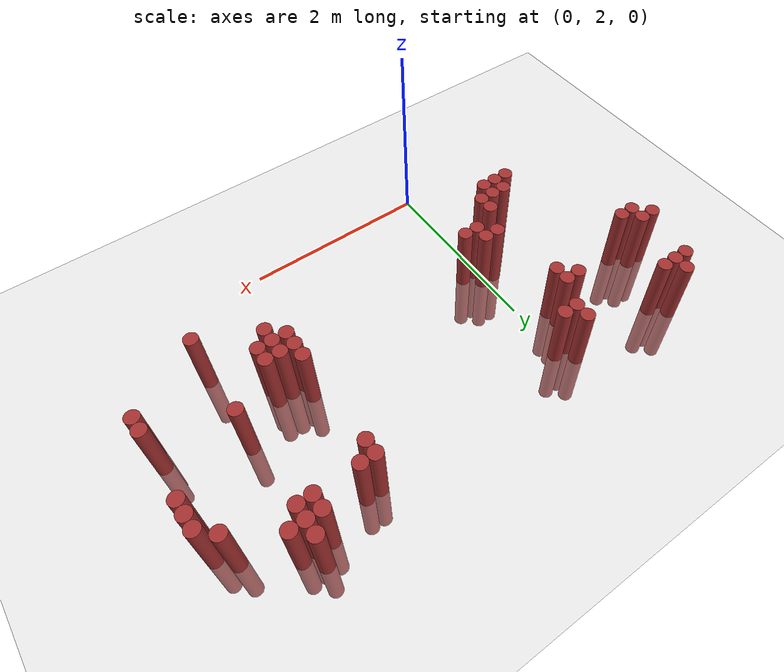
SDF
<sdf version="1.6">
 <world name="default">
  <model name="ground_plane">
   <static>1</static>
   <link name="link">
    <collision name="collision">
     <geometry><plane><normal>0 0 1</normal><size>100 100</size></plane></geometry>
     <surface><friction><ode><mu>100</mu><mu2>50</mu2></ode></friction></surface>
    </collision>
    <visual name="visual">
     <cast_shadows>0</cast_shadows>
     <geometry><plane><normal>0 0 1</normal><size>100 100</size></plane></geometry>
     <material>
      <script><uri>file://media/materials/scripts/gazebo.material</uri><name>Gazebo/Grey</name></script>
     </material>
    </visual>
   </link>
  </model>
  <model name="unit_cylinder_319">
   <static>1</static>
   <pose>-1.625000 4.225000 0.000000 0.000000 0.000000 0.000000</pose>
   <link name="link">
    <inertial>
     <mass>1</mass>
     <inertia><ixx>0.145833</ixx><ixy>0</ixy><ixz>0</ixz><iyy>0.145833</iyy><iyz>0</iyz><izz>0.125</izz></inertia>
    </inertial>
    <collision name="collision">
     <geometry><cylinder><radius>0.075000</radius><length>1.5</length></cylinder></geometry>
    </collision>
    <visual name="visual">
     <geometry><cylinder><radius>0.075000</radius><length>1.5</length></cylinder></geometry>
     <material>
      <ambient>0.648000 0.192000 0.192000 1</ambient>
      <diffuse>0.648000 0.192000 0.192000 1</diffuse>
     </material>
     <material>
      <script><name>Gazebo/Grey</name><uri>file://media/materials/scripts/gazebo.material</uri></script>
     </material>
    </visual>
   </link>
  </model>
  <model name="unit_cylinder_320">
   <static>1</static>
   <pose>-1.475000 4.075000 0.000000 0.000000 0.000000 0.000000</pose>
   <link name="link">
    <inertial>
     <mass>1</mass>
     <inertia><ixx>0.145833</ixx><ixy>0</ixy><ixz>0</ixz><iyy>0.145833</iyy><iyz>0</iyz><izz>0.125</izz></inertia>
    </inertial>
    <collision name="collision">
     <geometry><cylinder><radius>0.075000</radius><length>1.5</length></cylinder></geometry>
    </collision>
    <visual name="visual">
     <geometry><cylinder><radius>0.075000</radius><length>1.5</length></cylinder></geometry>
     <material>
      <ambient>0.648000 0.192000 0.192000 1</ambient>
      <diffuse>0.648000 0.192000 0.192000 1</diffuse>
     </material>
     <material>
      <script><name>Gazebo/Grey</name><uri>file://media/materials/scripts/gazebo.material</uri></script>
     </material>
    </visual>
   </link>
  </model>
  <model name="unit_cylinder_321">
   <static>1</static>
   <pose>-1.475000 4.225000 0.000000 0.000000 0.000000 0.000000</pose>
   <link name="link">
    <inertial>
     <mass>1</mass>
     <inertia><ixx>0.145833</ixx><ixy>0</ixy><ixz>0</ixz><iyy>0.145833</iyy><iyz>0</iyz><izz>0.125</izz></inertia>
    </inertial>
    <collision name="collision">
     <geometry><cylinder><radius>0.075000</radius><length>1.5</length></cylinder></geometry>
    </collision>
    <visual name="visual">
     <geometry><cylinder><radius>0.075000</radius><length>1.5</length></cylinder></geometry>
     <material>
      <ambient>0.648000 0.192000 0.192000 1</ambient>
      <diffuse>0.648000 0.192000 0.192000 1</diffuse>
     </material>
     <material>
      <script><name>Gazebo/Grey</name><uri>file://media/materials/scripts/gazebo.material</uri></script>
     </material>
    </visual>
   </link>
  </model>
  <model name="unit_cylinder_322">
   <static>1</static>
   <pose>-1.475000 4.825000 0.000000 0.000000 0.000000 0.000000</pose>
   <link name="link">
    <inertial>
     <mass>1</mass>
     <inertia><ixx>0.145833</ixx><ixy>0</ixy><ixz>0</ixz><iyy>0.145833</iyy><iyz>0</iyz><izz>0.125</izz></inertia>
    </inertial>
    <collision name="collision">
     <geometry><cylinder><radius>0.075000</radius><length>1.5</length></cylinder></geometry>
    </collision>
    <visual name="visual">
     <geometry><cylinder><radius>0.075000</radius><length>1.5</length></cylinder></geometry>
     <material>
      <ambient>0.648000 0.192000 0.192000 1</ambient>
      <diffuse>0.648000 0.192000 0.192000 1</diffuse>
     </material>
     <material>
      <script><name>Gazebo/Grey</name><uri>file://media/materials/scripts/gazebo.material</uri></script>
     </material>
    </visual>
   </link>
  </model>
  <model name="unit_cylinder_323">
   <static>1</static>
   <pose>-1.325000 4.075000 0.000000 0.000000 0.000000 0.000000</pose>
   <link name="link">
    <inertial>
     <mass>1</mass>
     <inertia><ixx>0.145833</ixx><ixy>0</ixy><ixz>0</ixz><iyy>0.145833</iyy><iyz>0</iyz><izz>0.125</izz></inertia>
    </inertial>
    <collision name="collision">
     <geometry><cylinder><radius>0.075000</radius><length>1.5</length></cylinder></geometry>
    </collision>
    <visual name="visual">
     <geometry><cylinder><radius>0.075000</radius><length>1.5</length></cylinder></geometry>
     <material>
      <ambient>0.648000 0.192000 0.192000 1</ambient>
      <diffuse>0.648000 0.192000 0.192000 1</diffuse>
     </material>
     <material>
      <script><name>Gazebo/Grey</name><uri>file://media/materials/scripts/gazebo.material</uri></script>
     </material>
    </visual>
   </link>
  </model>
  <model name="unit_cylinder_324">
   <static>1</static>
   <pose>-1.325000 4.825000 0.000000 0.000000 0.000000 0.000000</pose>
   <link name="link">
    <inertial>
     <mass>1</mass>
     <inertia><ixx>0.145833</ixx><ixy>0</ixy><ixz>0</ixz><iyy>0.145833</iyy><iyz>0</iyz><izz>0.125</izz></inertia>
    </inertial>
    <collision name="collision">
     <geometry><cylinder><radius>0.075000</radius><length>1.5</length></cylinder></geometry>
    </collision>
    <visual name="visual">
     <geometry><cylinder><radius>0.075000</radius><length>1.5</length></cylinder></geometry>
     <material>
      <ambient>0.648000 0.192000 0.192000 1</ambient>
      <diffuse>0.648000 0.192000 0.192000 1</diffuse>
     </material>
     <material>
      <script><name>Gazebo/Grey</name><uri>file://media/materials/scripts/gazebo.material</uri></script>
     </material>
    </visual>
   </link>
  </model>
  <model name="unit_cylinder_325">
   <static>1</static>
   <pose>-1.325000 4.975000 0.000000 0.000000 0.000000 0.000000</pose>
   <link name="link">
    <inertial>
     <mass>1</mass>
     <inertia><ixx>0.145833</ixx><ixy>0</ixy><ixz>0</ixz><iyy>0.145833</iyy><iyz>0</iyz><izz>0.125</izz></inertia>
    </inertial>
    <collision name="collision">
     <geometry><cylinder><radius>0.075000</radius><length>1.5</length></cylinder></geometry>
    </collision>
    <visual name="visual">
     <geometry><cylinder><radius>0.075000</radius><length>1.5</length></cylinder></geometry>
     <material>
      <ambient>0.648000 0.192000 0.192000 1</ambient>
      <diffuse>0.648000 0.192000 0.192000 1</diffuse>
     </material>
     <material>
      <script><name>Gazebo/Grey</name><uri>file://media/materials/scripts/gazebo.material</uri></script>
     </material>
    </visual>
   </link>
  </model>
  <model name="unit_cylinder_327">
   <static>1</static>
   <pose>-1.175000 4.825000 0.000000 0.000000 0.000000 0.000000</pose>
   <link name="link">
    <inertial>
     <mass>1</mass>
     <inertia><ixx>0.145833</ixx><ixy>0</ixy><ixz>0</ixz><iyy>0.145833</iyy><iyz>0</iyz><izz>0.125</izz></inertia>
    </inertial>
    <collision name="collision">
     <geometry><cylinder><radius>0.075000</radius><length>1.5</length></cylinder></geometry>
    </collision>
    <visual name="visual">
     <geometry><cylinder><radius>0.075000</radius><length>1.5</length></cylinder></geometry>
     <material>
      <ambient>0.648000 0.192000 0.192000 1</ambient>
      <diffuse>0.648000 0.192000 0.192000 1</diffuse>
     </material>
     <material>
      <script><name>Gazebo/Grey</name><uri>file://media/materials/scripts/gazebo.material</uri></script>
     </material>
    </visual>
   </link>
  </model>
  <model name="unit_cylinder_332">
   <static>1</static>
   <pose>-0.725000 2.875000 0.000000 0.000000 0.000000 0.000000</pose>
   <link name="link">
    <inertial>
     <mass>1</mass>
     <inertia><ixx>0.145833</ixx><ixy>0</ixy><ixz>0</ixz><iyy>0.145833</iyy><iyz>0</iyz><izz>0.125</izz></inertia>
    </inertial>
    <collision name="collision">
     <geometry><cylinder><radius>0.075000</radius><length>1.5</length></cylinder></geometry>
    </collision>
    <visual name="visual">
     <geometry><cylinder><radius>0.075000</radius><length>1.5</length></cylinder></geometry>
     <material>
      <ambient>0.648000 0.192000 0.192000 1</ambient>
      <diffuse>0.648000 0.192000 0.192000 1</diffuse>
     </material>
     <material>
      <script><name>Gazebo/Grey</name><uri>file://media/materials/scripts/gazebo.material</uri></script>
     </material>
    </visual>
   </link>
  </model>
  <model name="unit_cylinder_338">
   <static>1</static>
   <pose>-0.575000 2.875000 0.000000 0.000000 0.000000 0.000000</pose>
   <link name="link">
    <inertial>
     <mass>1</mass>
     <inertia><ixx>0.145833</ixx><ixy>0</ixy><ixz>0</ixz><iyy>0.145833</iyy><iyz>0</iyz><izz>0.125</izz></inertia>
    </inertial>
    <collision name="collision">
     <geometry><cylinder><radius>0.075000</radius><length>1.5</length></cylinder></geometry>
    </collision>
    <visual name="visual">
     <geometry><cylinder><radius>0.075000</radius><length>1.5</length></cylinder></geometry>
     <material>
      <ambient>0.648000 0.192000 0.192000 1</ambient>
      <diffuse>0.648000 0.192000 0.192000 1</diffuse>
     </material>
     <material>
      <script><name>Gazebo/Grey</name><uri>file://media/materials/scripts/gazebo.material</uri></script>
     </material>
    </visual>
   </link>
  </model>
  <model name="unit_cylinder_339">
   <static>1</static>
   <pose>-0.575000 3.025000 0.000000 0.000000 0.000000 0.000000</pose>
   <link name="link">
    <inertial>
     <mass>1</mass>
     <inertia><ixx>0.145833</ixx><ixy>0</ixy><ixz>0</ixz><iyy>0.145833</iyy><iyz>0</iyz><izz>0.125</izz></inertia>
    </inertial>
    <collision name="collision">
     <geometry><cylinder><radius>0.075000</radius><length>1.5</length></cylinder></geometry>
    </collision>
    <visual name="visual">
     <geometry><cylinder><radius>0.075000</radius><length>1.5</length></cylinder></geometry>
     <material>
      <ambient>0.648000 0.192000 0.192000 1</ambient>
      <diffuse>0.648000 0.192000 0.192000 1</diffuse>
     </material>
     <material>
      <script><name>Gazebo/Grey</name><uri>file://media/materials/scripts/gazebo.material</uri></script>
     </material>
    </visual>
   </link>
  </model>
  <model name="unit_cylinder_343">
   <static>1</static>
   <pose>-0.425000 2.875000 0.000000 0.000000 0.000000 0.000000</pose>
   <link name="link">
    <inertial>
     <mass>1</mass>
     <inertia><ixx>0.145833</ixx><ixy>0</ixy><ixz>0</ixz><iyy>0.145833</iyy><iyz>0</iyz><izz>0.125</izz></inertia>
    </inertial>
    <collision name="collision">
     <geometry><cylinder><radius>0.075000</radius><length>1.5</length></cylinder></geometry>
    </collision>
    <visual name="visual">
     <geometry><cylinder><radius>0.075000</radius><length>1.5</length></cylinder></geometry>
     <material>
      <ambient>0.648000 0.192000 0.192000 1</ambient>
      <diffuse>0.648000 0.192000 0.192000 1</diffuse>
     </material>
     <material>
      <script><name>Gazebo/Grey</name><uri>file://media/materials/scripts/gazebo.material</uri></script>
     </material>
    </visual>
   </link>
  </model>
  <model name="unit_cylinder_344">
   <static>1</static>
   <pose>-0.425000 3.025000 0.000000 0.000000 0.000000 0.000000</pose>
   <link name="link">
    <inertial>
     <mass>1</mass>
     <inertia><ixx>0.145833</ixx><ixy>0</ixy><ixz>0</ixz><iyy>0.145833</iyy><iyz>0</iyz><izz>0.125</izz></inertia>
    </inertial>
    <collision name="collision">
     <geometry><cylinder><radius>0.075000</radius><length>1.5</length></cylinder></geometry>
    </collision>
    <visual name="visual">
     <geometry><cylinder><radius>0.075000</radius><length>1.5</length></cylinder></geometry>
     <material>
      <ambient>0.648000 0.192000 0.192000 1</ambient>
      <diffuse>0.648000 0.192000 0.192000 1</diffuse>
     </material>
     <material>
      <script><name>Gazebo/Grey</name><uri>file://media/materials/scripts/gazebo.material</uri></script>
     </material>
    </visual>
   </link>
  </model>
  <model name="unit_cylinder_345">
   <static>1</static>
   <pose>-0.425000 4.375000 0.000000 0.000000 0.000000 0.000000</pose>
   <link name="link">
    <inertial>
     <mass>1</mass>
     <inertia><ixx>0.145833</ixx><ixy>0</ixy><ixz>0</ixz><iyy>0.145833</iyy><iyz>0</iyz><izz>0.125</izz></inertia>
    </inertial>
    <collision name="collision">
     <geometry><cylinder><radius>0.075000</radius><length>1.5</length></cylinder></geometry>
    </collision>
    <visual name="visual">
     <geometry><cylinder><radius>0.075000</radius><length>1.5</length></cylinder></geometry>
     <material>
      <ambient>0.648000 0.192000 0.192000 1</ambient>
      <diffuse>0.648000 0.192000 0.192000 1</diffuse>
     </material>
     <material>
      <script><name>Gazebo/Grey</name><uri>file://media/materials/scripts/gazebo.material</uri></script>
     </material>
    </visual>
   </link>
  </model>
  <model name="unit_cylinder_347">
   <static>1</static>
   <pose>-0.275000 3.025000 0.000000 0.000000 0.000000 0.000000</pose>
   <link name="link">
    <inertial>
     <mass>1</mass>
     <inertia><ixx>0.145833</ixx><ixy>0</ixy><ixz>0</ixz><iyy>0.145833</iyy><iyz>0</iyz><izz>0.125</izz></inertia>
    </inertial>
    <collision name="collision">
     <geometry><cylinder><radius>0.075000</radius><length>1.5</length></cylinder></geometry>
    </collision>
    <visual name="visual">
     <geometry><cylinder><radius>0.075000</radius><length>1.5</length></cylinder></geometry>
     <material>
      <ambient>0.648000 0.192000 0.192000 1</ambient>
      <diffuse>0.648000 0.192000 0.192000 1</diffuse>
     </material>
     <material>
      <script><name>Gazebo/Grey</name><uri>file://media/materials/scripts/gazebo.material</uri></script>
     </material>
    </visual>
   </link>
  </model>
  <model name="unit_cylinder_348">
   <static>1</static>
   <pose>-0.275000 3.175000 0.000000 0.000000 0.000000 0.000000</pose>
   <link name="link">
    <inertial>
     <mass>1</mass>
     <inertia><ixx>0.145833</ixx><ixy>0</ixy><ixz>0</ixz><iyy>0.145833</iyy><iyz>0</iyz><izz>0.125</izz></inertia>
    </inertial>
    <collision name="collision">
     <geometry><cylinder><radius>0.075000</radius><length>1.5</length></cylinder></geometry>
    </collision>
    <visual name="visual">
     <geometry><cylinder><radius>0.075000</radius><length>1.5</length></cylinder></geometry>
     <material>
      <ambient>0.648000 0.192000 0.192000 1</ambient>
      <diffuse>0.648000 0.192000 0.192000 1</diffuse>
     </material>
     <material>
      <script><name>Gazebo/Grey</name><uri>file://media/materials/scripts/gazebo.material</uri></script>
     </material>
    </visual>
   </link>
  </model>
  <model name="unit_cylinder_349">
   <static>1</static>
   <pose>-0.275000 4.225000 0.000000 0.000000 0.000000 0.000000</pose>
   <link name="link">
    <inertial>
     <mass>1</mass>
     <inertia><ixx>0.145833</ixx><ixy>0</ixy><ixz>0</ixz><iyy>0.145833</iyy><iyz>0</iyz><izz>0.125</izz></inertia>
    </inertial>
    <collision name="collision">
     <geometry><cylinder><radius>0.075000</radius><length>1.5</length></cylinder></geometry>
    </collision>
    <visual name="visual">
     <geometry><cylinder><radius>0.075000</radius><length>1.5</length></cylinder></geometry>
     <material>
      <ambient>0.648000 0.192000 0.192000 1</ambient>
      <diffuse>0.648000 0.192000 0.192000 1</diffuse>
     </material>
     <material>
      <script><name>Gazebo/Grey</name><uri>file://media/materials/scripts/gazebo.material</uri></script>
     </material>
    </visual>
   </link>
  </model>
  <model name="unit_cylinder_350">
   <static>1</static>
   <pose>-0.275000 4.375000 0.000000 0.000000 0.000000 0.000000</pose>
   <link name="link">
    <inertial>
     <mass>1</mass>
     <inertia><ixx>0.145833</ixx><ixy>0</ixy><ixz>0</ixz><iyy>0.145833</iyy><iyz>0</iyz><izz>0.125</izz></inertia>
    </inertial>
    <collision name="collision">
     <geometry><cylinder><radius>0.075000</radius><length>1.5</length></cylinder></geometry>
    </collision>
    <visual name="visual">
     <geometry><cylinder><radius>0.075000</radius><length>1.5</length></cylinder></geometry>
     <material>
      <ambient>0.648000 0.192000 0.192000 1</ambient>
      <diffuse>0.648000 0.192000 0.192000 1</diffuse>
     </material>
     <material>
      <script><name>Gazebo/Grey</name><uri>file://media/materials/scripts/gazebo.material</uri></script>
     </material>
    </visual>
   </link>
  </model>
  <model name="unit_cylinder_353">
   <static>1</static>
   <pose>-0.125000 3.475000 0.000000 0.000000 0.000000 0.000000</pose>
   <link name="link">
    <inertial>
     <mass>1</mass>
     <inertia><ixx>0.145833</ixx><ixy>0</ixy><ixz>0</ixz><iyy>0.145833</iyy><iyz>0</iyz><izz>0.125</izz></inertia>
    </inertial>
    <collision name="collision">
     <geometry><cylinder><radius>0.075000</radius><length>1.5</length></cylinder></geometry>
    </collision>
    <visual name="visual">
     <geometry><cylinder><radius>0.075000</radius><length>1.5</length></cylinder></geometry>
     <material>
      <ambient>0.648000 0.192000 0.192000 1</ambient>
      <diffuse>0.648000 0.192000 0.192000 1</diffuse>
     </material>
     <material>
      <script><name>Gazebo/Grey</name><uri>file://media/materials/scripts/gazebo.material</uri></script>
     </material>
    </visual>
   </link>
  </model>
  <model name="unit_cylinder_354">
   <static>1</static>
   <pose>-0.125000 4.675000 0.000000 0.000000 0.000000 0.000000</pose>
   <link name="link">
    <inertial>
     <mass>1</mass>
     <inertia><ixx>0.145833</ixx><ixy>0</ixy><ixz>0</ixz><iyy>0.145833</iyy><iyz>0</iyz><izz>0.125</izz></inertia>
    </inertial>
    <collision name="collision">
     <geometry><cylinder><radius>0.075000</radius><length>1.5</length></cylinder></geometry>
    </collision>
    <visual name="visual">
     <geometry><cylinder><radius>0.075000</radius><length>1.5</length></cylinder></geometry>
     <material>
      <ambient>0.648000 0.192000 0.192000 1</ambient>
      <diffuse>0.648000 0.192000 0.192000 1</diffuse>
     </material>
     <material>
      <script><name>Gazebo/Grey</name><uri>file://media/materials/scripts/gazebo.material</uri></script>
     </material>
    </visual>
   </link>
  </model>
  <model name="unit_cylinder_355">
   <static>1</static>
   <pose>-0.125000 4.825000 0.000000 0.000000 0.000000 0.000000</pose>
   <link name="link">
    <inertial>
     <mass>1</mass>
     <inertia><ixx>0.145833</ixx><ixy>0</ixy><ixz>0</ixz><iyy>0.145833</iyy><iyz>0</iyz><izz>0.125</izz></inertia>
    </inertial>
    <collision name="collision">
     <geometry><cylinder><radius>0.075000</radius><length>1.5</length></cylinder></geometry>
    </collision>
    <visual name="visual">
     <geometry><cylinder><radius>0.075000</radius><length>1.5</length></cylinder></geometry>
     <material>
      <ambient>0.648000 0.192000 0.192000 1</ambient>
      <diffuse>0.648000 0.192000 0.192000 1</diffuse>
     </material>
     <material>
      <script><name>Gazebo/Grey</name><uri>file://media/materials/scripts/gazebo.material</uri></script>
     </material>
    </visual>
   </link>
  </model>
  <model name="unit_cylinder_356">
   <static>1</static>
   <pose>0.025000 3.325000 0.000000 0.000000 0.000000 0.000000</pose>
   <link name="link">
    <inertial>
     <mass>1</mass>
     <inertia><ixx>0.145833</ixx><ixy>0</ixy><ixz>0</ixz><iyy>0.145833</iyy><iyz>0</iyz><izz>0.125</izz></inertia>
    </inertial>
    <collision name="collision">
     <geometry><cylinder><radius>0.075000</radius><length>1.5</length></cylinder></geometry>
    </collision>
    <visual name="visual">
     <geometry><cylinder><radius>0.075000</radius><length>1.5</length></cylinder></geometry>
     <material>
      <ambient>0.648000 0.192000 0.192000 1</ambient>
      <diffuse>0.648000 0.192000 0.192000 1</diffuse>
     </material>
     <material>
      <script><name>Gazebo/Grey</name><uri>file://media/materials/scripts/gazebo.material</uri></script>
     </material>
    </visual>
   </link>
  </model>
  <model name="unit_cylinder_357">
   <static>1</static>
   <pose>0.025000 3.475000 0.000000 0.000000 0.000000 0.000000</pose>
   <link name="link">
    <inertial>
     <mass>1</mass>
     <inertia><ixx>0.145833</ixx><ixy>0</ixy><ixz>0</ixz><iyy>0.145833</iyy><iyz>0</iyz><izz>0.125</izz></inertia>
    </inertial>
    <collision name="collision">
     <geometry><cylinder><radius>0.075000</radius><length>1.5</length></cylinder></geometry>
    </collision>
    <visual name="visual">
     <geometry><cylinder><radius>0.075000</radius><length>1.5</length></cylinder></geometry>
     <material>
      <ambient>0.648000 0.192000 0.192000 1</ambient>
      <diffuse>0.648000 0.192000 0.192000 1</diffuse>
     </material>
     <material>
      <script><name>Gazebo/Grey</name><uri>file://media/materials/scripts/gazebo.material</uri></script>
     </material>
    </visual>
   </link>
  </model>
  <model name="unit_cylinder_358">
   <static>1</static>
   <pose>0.025000 4.675000 0.000000 0.000000 0.000000 0.000000</pose>
   <link name="link">
    <inertial>
     <mass>1</mass>
     <inertia><ixx>0.145833</ixx><ixy>0</ixy><ixz>0</ixz><iyy>0.145833</iyy><iyz>0</iyz><izz>0.125</izz></inertia>
    </inertial>
    <collision name="collision">
     <geometry><cylinder><radius>0.075000</radius><length>1.5</length></cylinder></geometry>
    </collision>
    <visual name="visual">
     <geometry><cylinder><radius>0.075000</radius><length>1.5</length></cylinder></geometry>
     <material>
      <ambient>0.648000 0.192000 0.192000 1</ambient>
      <diffuse>0.648000 0.192000 0.192000 1</diffuse>
     </material>
     <material>
      <script><name>Gazebo/Grey</name><uri>file://media/materials/scripts/gazebo.material</uri></script>
     </material>
    </visual>
   </link>
  </model>
  <model name="unit_cylinder_361">
   <static>1</static>
   <pose>0.175000 3.325000 0.000000 0.000000 0.000000 0.000000</pose>
   <link name="link">
    <inertial>
     <mass>1</mass>
     <inertia><ixx>0.145833</ixx><ixy>0</ixy><ixz>0</ixz><iyy>0.145833</iyy><iyz>0</iyz><izz>0.125</izz></inertia>
    </inertial>
    <collision name="collision">
     <geometry><cylinder><radius>0.075000</radius><length>1.5</length></cylinder></geometry>
    </collision>
    <visual name="visual">
     <geometry><cylinder><radius>0.075000</radius><length>1.5</length></cylinder></geometry>
     <material>
      <ambient>0.648000 0.192000 0.192000 1</ambient>
      <diffuse>0.648000 0.192000 0.192000 1</diffuse>
     </material>
     <material>
      <script><name>Gazebo/Grey</name><uri>file://media/materials/scripts/gazebo.material</uri></script>
     </material>
    </visual>
   </link>
  </model>
  <model name="unit_cylinder_388">
   <static>1</static>
   <pose>2.275000 3.325000 0.000000 0.000000 0.000000 0.000000</pose>
   <link name="link">
    <inertial>
     <mass>1</mass>
     <inertia><ixx>0.145833</ixx><ixy>0</ixy><ixz>0</ixz><iyy>0.145833</iyy><iyz>0</iyz><izz>0.125</izz></inertia>
    </inertial>
    <collision name="collision">
     <geometry><cylinder><radius>0.075000</radius><length>1.5</length></cylinder></geometry>
    </collision>
    <visual name="visual">
     <geometry><cylinder><radius>0.075000</radius><length>1.5</length></cylinder></geometry>
     <material>
      <ambient>0.648000 0.192000 0.192000 1</ambient>
      <diffuse>0.648000 0.192000 0.192000 1</diffuse>
     </material>
     <material>
      <script><name>Gazebo/Grey</name><uri>file://media/materials/scripts/gazebo.material</uri></script>
     </material>
    </visual>
   </link>
  </model>
  <model name="unit_cylinder_389">
   <static>1</static>
   <pose>2.275000 3.475000 0.000000 0.000000 0.000000 0.000000</pose>
   <link name="link">
    <inertial>
     <mass>1</mass>
     <inertia><ixx>0.145833</ixx><ixy>0</ixy><ixz>0</ixz><iyy>0.145833</iyy><iyz>0</iyz><izz>0.125</izz></inertia>
    </inertial>
    <collision name="collision">
     <geometry><cylinder><radius>0.075000</radius><length>1.5</length></cylinder></geometry>
    </collision>
    <visual name="visual">
     <geometry><cylinder><radius>0.075000</radius><length>1.5</length></cylinder></geometry>
     <material>
      <ambient>0.648000 0.192000 0.192000 1</ambient>
      <diffuse>0.648000 0.192000 0.192000 1</diffuse>
     </material>
     <material>
      <script><name>Gazebo/Grey</name><uri>file://media/materials/scripts/gazebo.material</uri></script>
     </material>
    </visual>
   </link>
  </model>
  <model name="unit_cylinder_390">
   <static>1</static>
   <pose>2.275000 3.625000 0.000000 0.000000 0.000000 0.000000</pose>
   <link name="link">
    <inertial>
     <mass>1</mass>
     <inertia><ixx>0.145833</ixx><ixy>0</ixy><ixz>0</ixz><iyy>0.145833</iyy><iyz>0</iyz><izz>0.125</izz></inertia>
    </inertial>
    <collision name="collision">
     <geometry><cylinder><radius>0.075000</radius><length>1.5</length></cylinder></geometry>
    </collision>
    <visual name="visual">
     <geometry><cylinder><radius>0.075000</radius><length>1.5</length></cylinder></geometry>
     <material>
      <ambient>0.648000 0.192000 0.192000 1</ambient>
      <diffuse>0.648000 0.192000 0.192000 1</diffuse>
     </material>
     <material>
      <script><name>Gazebo/Grey</name><uri>file://media/materials/scripts/gazebo.material</uri></script>
     </material>
    </visual>
   </link>
  </model>
  <model name="unit_cylinder_391">
   <static>1</static>
   <pose>2.275000 4.675000 0.000000 0.000000 0.000000 0.000000</pose>
   <link name="link">
    <inertial>
     <mass>1</mass>
     <inertia><ixx>0.145833</ixx><ixy>0</ixy><ixz>0</ixz><iyy>0.145833</iyy><iyz>0</iyz><izz>0.125</izz></inertia>
    </inertial>
    <collision name="collision">
     <geometry><cylinder><radius>0.075000</radius><length>1.5</length></cylinder></geometry>
    </collision>
    <visual name="visual">
     <geometry><cylinder><radius>0.075000</radius><length>1.5</length></cylinder></geometry>
     <material>
      <ambient>0.648000 0.192000 0.192000 1</ambient>
      <diffuse>0.648000 0.192000 0.192000 1</diffuse>
     </material>
     <material>
      <script><name>Gazebo/Grey</name><uri>file://media/materials/scripts/gazebo.material</uri></script>
     </material>
    </visual>
   </link>
  </model>
  <model name="unit_cylinder_392">
   <static>1</static>
   <pose>2.275000 4.825000 0.000000 0.000000 0.000000 0.000000</pose>
   <link name="link">
    <inertial>
     <mass>1</mass>
     <inertia><ixx>0.145833</ixx><ixy>0</ixy><ixz>0</ixz><iyy>0.145833</iyy><iyz>0</iyz><izz>0.125</izz></inertia>
    </inertial>
    <collision name="collision">
     <geometry><cylinder><radius>0.075000</radius><length>1.5</length></cylinder></geometry>
    </collision>
    <visual name="visual">
     <geometry><cylinder><radius>0.075000</radius><length>1.5</length></cylinder></geometry>
     <material>
      <ambient>0.648000 0.192000 0.192000 1</ambient>
      <diffuse>0.648000 0.192000 0.192000 1</diffuse>
     </material>
     <material>
      <script><name>Gazebo/Grey</name><uri>file://media/materials/scripts/gazebo.material</uri></script>
     </material>
    </visual>
   </link>
  </model>
  <model name="unit_cylinder_394">
   <static>1</static>
   <pose>2.425000 3.175000 0.000000 0.000000 0.000000 0.000000</pose>
   <link name="link">
    <inertial>
     <mass>1</mass>
     <inertia><ixx>0.145833</ixx><ixy>0</ixy><ixz>0</ixz><iyy>0.145833</iyy><iyz>0</iyz><izz>0.125</izz></inertia>
    </inertial>
    <collision name="collision">
     <geometry><cylinder><radius>0.075000</radius><length>1.5</length></cylinder></geometry>
    </collision>
    <visual name="visual">
     <geometry><cylinder><radius>0.075000</radius><length>1.5</length></cylinder></geometry>
     <material>
      <ambient>0.648000 0.192000 0.192000 1</ambient>
      <diffuse>0.648000 0.192000 0.192000 1</diffuse>
     </material>
     <material>
      <script><name>Gazebo/Grey</name><uri>file://media/materials/scripts/gazebo.material</uri></script>
     </material>
    </visual>
   </link>
  </model>
  <model name="unit_cylinder_395">
   <static>1</static>
   <pose>2.425000 3.325000 0.000000 0.000000 0.000000 0.000000</pose>
   <link name="link">
    <inertial>
     <mass>1</mass>
     <inertia><ixx>0.145833</ixx><ixy>0</ixy><ixz>0</ixz><iyy>0.145833</iyy><iyz>0</iyz><izz>0.125</izz></inertia>
    </inertial>
    <collision name="collision">
     <geometry><cylinder><radius>0.075000</radius><length>1.5</length></cylinder></geometry>
    </collision>
    <visual name="visual">
     <geometry><cylinder><radius>0.075000</radius><length>1.5</length></cylinder></geometry>
     <material>
      <ambient>0.648000 0.192000 0.192000 1</ambient>
      <diffuse>0.648000 0.192000 0.192000 1</diffuse>
     </material>
     <material>
      <script><name>Gazebo/Grey</name><uri>file://media/materials/scripts/gazebo.material</uri></script>
     </material>
    </visual>
   </link>
  </model>
  <model name="unit_cylinder_396">
   <static>1</static>
   <pose>2.425000 3.475000 0.000000 0.000000 0.000000 0.000000</pose>
   <link name="link">
    <inertial>
     <mass>1</mass>
     <inertia><ixx>0.145833</ixx><ixy>0</ixy><ixz>0</ixz><iyy>0.145833</iyy><iyz>0</iyz><izz>0.125</izz></inertia>
    </inertial>
    <collision name="collision">
     <geometry><cylinder><radius>0.075000</radius><length>1.5</length></cylinder></geometry>
    </collision>
    <visual name="visual">
     <geometry><cylinder><radius>0.075000</radius><length>1.5</length></cylinder></geometry>
     <material>
      <ambient>0.648000 0.192000 0.192000 1</ambient>
      <diffuse>0.648000 0.192000 0.192000 1</diffuse>
     </material>
     <material>
      <script><name>Gazebo/Grey</name><uri>file://media/materials/scripts/gazebo.material</uri></script>
     </material>
    </visual>
   </link>
  </model>
  <model name="unit_cylinder_397">
   <static>1</static>
   <pose>2.425000 4.825000 0.000000 0.000000 0.000000 0.000000</pose>
   <link name="link">
    <inertial>
     <mass>1</mass>
     <inertia><ixx>0.145833</ixx><ixy>0</ixy><ixz>0</ixz><iyy>0.145833</iyy><iyz>0</iyz><izz>0.125</izz></inertia>
    </inertial>
    <collision name="collision">
     <geometry><cylinder><radius>0.075000</radius><length>1.5</length></cylinder></geometry>
    </collision>
    <visual name="visual">
     <geometry><cylinder><radius>0.075000</radius><length>1.5</length></cylinder></geometry>
     <material>
      <ambient>0.648000 0.192000 0.192000 1</ambient>
      <diffuse>0.648000 0.192000 0.192000 1</diffuse>
     </material>
     <material>
      <script><name>Gazebo/Grey</name><uri>file://media/materials/scripts/gazebo.material</uri></script>
     </material>
    </visual>
   </link>
  </model>
  <model name="unit_cylinder_400">
   <static>1</static>
   <pose>2.575000 3.325000 0.000000 0.000000 0.000000 0.000000</pose>
   <link name="link">
    <inertial>
     <mass>1</mass>
     <inertia><ixx>0.145833</ixx><ixy>0</ixy><ixz>0</ixz><iyy>0.145833</iyy><iyz>0</iyz><izz>0.125</izz></inertia>
    </inertial>
    <collision name="collision">
     <geometry><cylinder><radius>0.075000</radius><length>1.5</length></cylinder></geometry>
    </collision>
    <visual name="visual">
     <geometry><cylinder><radius>0.075000</radius><length>1.5</length></cylinder></geometry>
     <material>
      <ambient>0.648000 0.192000 0.192000 1</ambient>
      <diffuse>0.648000 0.192000 0.192000 1</diffuse>
     </material>
     <material>
      <script><name>Gazebo/Grey</name><uri>file://media/materials/scripts/gazebo.material</uri></script>
     </material>
    </visual>
   </link>
  </model>
  <model name="unit_cylinder_401">
   <static>1</static>
   <pose>2.575000 3.475000 0.000000 0.000000 0.000000 0.000000</pose>
   <link name="link">
    <inertial>
     <mass>1</mass>
     <inertia><ixx>0.145833</ixx><ixy>0</ixy><ixz>0</ixz><iyy>0.145833</iyy><iyz>0</iyz><izz>0.125</izz></inertia>
    </inertial>
    <collision name="collision">
     <geometry><cylinder><radius>0.075000</radius><length>1.5</length></cylinder></geometry>
    </collision>
    <visual name="visual">
     <geometry><cylinder><radius>0.075000</radius><length>1.5</length></cylinder></geometry>
     <material>
      <ambient>0.648000 0.192000 0.192000 1</ambient>
      <diffuse>0.648000 0.192000 0.192000 1</diffuse>
     </material>
     <material>
      <script><name>Gazebo/Grey</name><uri>file://media/materials/scripts/gazebo.material</uri></script>
     </material>
    </visual>
   </link>
  </model>
  <model name="unit_cylinder_410">
   <static>1</static>
   <pose>2.875000 4.825000 0.000000 0.000000 0.000000 0.000000</pose>
   <link name="link">
    <inertial>
     <mass>1</mass>
     <inertia><ixx>0.145833</ixx><ixy>0</ixy><ixz>0</ixz><iyy>0.145833</iyy><iyz>0</iyz><izz>0.125</izz></inertia>
    </inertial>
    <collision name="collision">
     <geometry><cylinder><radius>0.075000</radius><length>1.5</length></cylinder></geometry>
    </collision>
    <visual name="visual">
     <geometry><cylinder><radius>0.075000</radius><length>1.5</length></cylinder></geometry>
     <material>
      <ambient>0.648000 0.192000 0.192000 1</ambient>
      <diffuse>0.648000 0.192000 0.192000 1</diffuse>
     </material>
     <material>
      <script><name>Gazebo/Grey</name><uri>file://media/materials/scripts/gazebo.material</uri></script>
     </material>
    </visual>
   </link>
  </model>
  <model name="unit_cylinder_411">
   <static>1</static>
   <pose>2.875000 4.975000 0.000000 0.000000 0.000000 0.000000</pose>
   <link name="link">
    <inertial>
     <mass>1</mass>
     <inertia><ixx>0.145833</ixx><ixy>0</ixy><ixz>0</ixz><iyy>0.145833</iyy><iyz>0</iyz><izz>0.125</izz></inertia>
    </inertial>
    <collision name="collision">
     <geometry><cylinder><radius>0.075000</radius><length>1.5</length></cylinder></geometry>
    </collision>
    <visual name="visual">
     <geometry><cylinder><radius>0.075000</radius><length>1.5</length></cylinder></geometry>
     <material>
      <ambient>0.648000 0.192000 0.192000 1</ambient>
      <diffuse>0.648000 0.192000 0.192000 1</diffuse>
     </material>
     <material>
      <script><name>Gazebo/Grey</name><uri>file://media/materials/scripts/gazebo.material</uri></script>
     </material>
    </visual>
   </link>
  </model>
  <model name="unit_cylinder_418">
   <static>1</static>
   <pose>3.025000 2.875000 0.000000 0.000000 0.000000 0.000000</pose>
   <link name="link">
    <inertial>
     <mass>1</mass>
     <inertia><ixx>0.145833</ixx><ixy>0</ixy><ixz>0</ixz><iyy>0.145833</iyy><iyz>0</iyz><izz>0.125</izz></inertia>
    </inertial>
    <collision name="collision">
     <geometry><cylinder><radius>0.075000</radius><length>1.5</length></cylinder></geometry>
    </collision>
    <visual name="visual">
     <geometry><cylinder><radius>0.075000</radius><length>1.5</length></cylinder></geometry>
     <material>
      <ambient>0.648000 0.192000 0.192000 1</ambient>
      <diffuse>0.648000 0.192000 0.192000 1</diffuse>
     </material>
     <material>
      <script><name>Gazebo/Grey</name><uri>file://media/materials/scripts/gazebo.material</uri></script>
     </material>
    </visual>
   </link>
  </model>
  <model name="unit_cylinder_419">
   <static>1</static>
   <pose>3.025000 3.775000 0.000000 0.000000 0.000000 0.000000</pose>
   <link name="link">
    <inertial>
     <mass>1</mass>
     <inertia><ixx>0.145833</ixx><ixy>0</ixy><ixz>0</ixz><iyy>0.145833</iyy><iyz>0</iyz><izz>0.125</izz></inertia>
    </inertial>
    <collision name="collision">
     <geometry><cylinder><radius>0.075000</radius><length>1.5</length></cylinder></geometry>
    </collision>
    <visual name="visual">
     <geometry><cylinder><radius>0.075000</radius><length>1.5</length></cylinder></geometry>
     <material>
      <ambient>0.648000 0.192000 0.192000 1</ambient>
      <diffuse>0.648000 0.192000 0.192000 1</diffuse>
     </material>
     <material>
      <script><name>Gazebo/Grey</name><uri>file://media/materials/scripts/gazebo.material</uri></script>
     </material>
    </visual>
   </link>
  </model>
  <model name="unit_cylinder_420">
   <static>1</static>
   <pose>3.025000 4.825000 0.000000 0.000000 0.000000 0.000000</pose>
   <link name="link">
    <inertial>
     <mass>1</mass>
     <inertia><ixx>0.145833</ixx><ixy>0</ixy><ixz>0</ixz><iyy>0.145833</iyy><iyz>0</iyz><izz>0.125</izz></inertia>
    </inertial>
    <collision name="collision">
     <geometry><cylinder><radius>0.075000</radius><length>1.5</length></cylinder></geometry>
    </collision>
    <visual name="visual">
     <geometry><cylinder><radius>0.075000</radius><length>1.5</length></cylinder></geometry>
     <material>
      <ambient>0.648000 0.192000 0.192000 1</ambient>
      <diffuse>0.648000 0.192000 0.192000 1</diffuse>
     </material>
     <material>
      <script><name>Gazebo/Grey</name><uri>file://media/materials/scripts/gazebo.material</uri></script>
     </material>
    </visual>
   </link>
  </model>
  <model name="unit_cylinder_421">
   <static>1</static>
   <pose>3.025000 4.975000 0.000000 0.000000 0.000000 0.000000</pose>
   <link name="link">
    <inertial>
     <mass>1</mass>
     <inertia><ixx>0.145833</ixx><ixy>0</ixy><ixz>0</ixz><iyy>0.145833</iyy><iyz>0</iyz><izz>0.125</izz></inertia>
    </inertial>
    <collision name="collision">
     <geometry><cylinder><radius>0.075000</radius><length>1.5</length></cylinder></geometry>
    </collision>
    <visual name="visual">
     <geometry><cylinder><radius>0.075000</radius><length>1.5</length></cylinder></geometry>
     <material>
      <ambient>0.648000 0.192000 0.192000 1</ambient>
      <diffuse>0.648000 0.192000 0.192000 1</diffuse>
     </material>
     <material>
      <script><name>Gazebo/Grey</name><uri>file://media/materials/scripts/gazebo.material</uri></script>
     </material>
    </visual>
   </link>
  </model>
  <model name="unit_cylinder_422">
   <static>1</static>
   <pose>3.025000 5.125000 0.000000 0.000000 0.000000 0.000000</pose>
   <link name="link">
    <inertial>
     <mass>1</mass>
     <inertia><ixx>0.145833</ixx><ixy>0</ixy><ixz>0</ixz><iyy>0.145833</iyy><iyz>0</iyz><izz>0.125</izz></inertia>
    </inertial>
    <collision name="collision">
     <geometry><cylinder><radius>0.075000</radius><length>1.5</length></cylinder></geometry>
    </collision>
    <visual name="visual">
     <geometry><cylinder><radius>0.075000</radius><length>1.5</length></cylinder></geometry>
     <material>
      <ambient>0.648000 0.192000 0.192000 1</ambient>
      <diffuse>0.648000 0.192000 0.192000 1</diffuse>
     </material>
     <material>
      <script><name>Gazebo/Grey</name><uri>file://media/materials/scripts/gazebo.material</uri></script>
     </material>
    </visual>
   </link>
  </model>
  <model name="unit_cylinder_425">
   <static>1</static>
   <pose>3.175000 4.975000 0.000000 0.000000 0.000000 0.000000</pose>
   <link name="link">
    <inertial>
     <mass>1</mass>
     <inertia><ixx>0.145833</ixx><ixy>0</ixy><ixz>0</ixz><iyy>0.145833</iyy><iyz>0</iyz><izz>0.125</izz></inertia>
    </inertial>
    <collision name="collision">
     <geometry><cylinder><radius>0.075000</radius><length>1.5</length></cylinder></geometry>
    </collision>
    <visual name="visual">
     <geometry><cylinder><radius>0.075000</radius><length>1.5</length></cylinder></geometry>
     <material>
      <ambient>0.648000 0.192000 0.192000 1</ambient>
      <diffuse>0.648000 0.192000 0.192000 1</diffuse>
     </material>
     <material>
      <script><name>Gazebo/Grey</name><uri>file://media/materials/scripts/gazebo.material</uri></script>
     </material>
    </visual>
   </link>
  </model>
  <model name="unit_cylinder_434">
   <static>1</static>
   <pose>3.625000 4.675000 0.000000 0.000000 0.000000 0.000000</pose>
   <link name="link">
    <inertial>
     <mass>1</mass>
     <inertia><ixx>0.145833</ixx><ixy>0</ixy><ixz>0</ixz><iyy>0.145833</iyy><iyz>0</iyz><izz>0.125</izz></inertia>
    </inertial>
    <collision name="collision">
     <geometry><cylinder><radius>0.075000</radius><length>1.5</length></cylinder></geometry>
    </collision>
    <visual name="visual">
     <geometry><cylinder><radius>0.075000</radius><length>1.5</length></cylinder></geometry>
     <material>
      <ambient>0.648000 0.192000 0.192000 1</ambient>
      <diffuse>0.648000 0.192000 0.192000 1</diffuse>
     </material>
     <material>
      <script><name>Gazebo/Grey</name><uri>file://media/materials/scripts/gazebo.material</uri></script>
     </material>
    </visual>
   </link>
  </model>
  <model name="unit_cylinder_442">
   <static>1</static>
   <pose>3.775000 3.325000 0.000000 0.000000 0.000000 0.000000</pose>
   <link name="link">
    <inertial>
     <mass>1</mass>
     <inertia><ixx>0.145833</ixx><ixy>0</ixy><ixz>0</ixz><iyy>0.145833</iyy><iyz>0</iyz><izz>0.125</izz></inertia>
    </inertial>
    <collision name="collision">
     <geometry><cylinder><radius>0.075000</radius><length>1.5</length></cylinder></geometry>
    </collision>
    <visual name="visual">
     <geometry><cylinder><radius>0.075000</radius><length>1.5</length></cylinder></geometry>
     <material>
      <ambient>0.648000 0.192000 0.192000 1</ambient>
      <diffuse>0.648000 0.192000 0.192000 1</diffuse>
     </material>
     <material>
      <script><name>Gazebo/Grey</name><uri>file://media/materials/scripts/gazebo.material</uri></script>
     </material>
    </visual>
   </link>
  </model>
  <model name="unit_cylinder_443">
   <static>1</static>
   <pose>3.775000 3.475000 0.000000 0.000000 0.000000 0.000000</pose>
   <link name="link">
    <inertial>
     <mass>1</mass>
     <inertia><ixx>0.145833</ixx><ixy>0</ixy><ixz>0</ixz><iyy>0.145833</iyy><iyz>0</iyz><izz>0.125</izz></inertia>
    </inertial>
    <collision name="collision">
     <geometry><cylinder><radius>0.075000</radius><length>1.5</length></cylinder></geometry>
    </collision>
    <visual name="visual">
     <geometry><cylinder><radius>0.075000</radius><length>1.5</length></cylinder></geometry>
     <material>
      <ambient>0.648000 0.192000 0.192000 1</ambient>
      <diffuse>0.648000 0.192000 0.192000 1</diffuse>
     </material>
     <material>
      <script><name>Gazebo/Grey</name><uri>file://media/materials/scripts/gazebo.material</uri></script>
     </material>
    </visual>
   </link>
  </model>
  <model name="unit_cylinder_444">
   <static>1</static>
   <pose>3.775000 4.225000 0.000000 0.000000 0.000000 0.000000</pose>
   <link name="link">
    <inertial>
     <mass>1</mass>
     <inertia><ixx>0.145833</ixx><ixy>0</ixy><ixz>0</ixz><iyy>0.145833</iyy><iyz>0</iyz><izz>0.125</izz></inertia>
    </inertial>
    <collision name="collision">
     <geometry><cylinder><radius>0.075000</radius><length>1.5</length></cylinder></geometry>
    </collision>
    <visual name="visual">
     <geometry><cylinder><radius>0.075000</radius><length>1.5</length></cylinder></geometry>
     <material>
      <ambient>0.648000 0.192000 0.192000 1</ambient>
      <diffuse>0.648000 0.192000 0.192000 1</diffuse>
     </material>
     <material>
      <script><name>Gazebo/Grey</name><uri>file://media/materials/scripts/gazebo.material</uri></script>
     </material>
    </visual>
   </link>
  </model>
  <model name="unit_cylinder_445">
   <static>1</static>
   <pose>3.775000 4.375000 0.000000 0.000000 0.000000 0.000000</pose>
   <link name="link">
    <inertial>
     <mass>1</mass>
     <inertia><ixx>0.145833</ixx><ixy>0</ixy><ixz>0</ixz><iyy>0.145833</iyy><iyz>0</iyz><izz>0.125</izz></inertia>
    </inertial>
    <collision name="collision">
     <geometry><cylinder><radius>0.075000</radius><length>1.5</length></cylinder></geometry>
    </collision>
    <visual name="visual">
     <geometry><cylinder><radius>0.075000</radius><length>1.5</length></cylinder></geometry>
     <material>
      <ambient>0.648000 0.192000 0.192000 1</ambient>
      <diffuse>0.648000 0.192000 0.192000 1</diffuse>
     </material>
     <material>
      <script><name>Gazebo/Grey</name><uri>file://media/materials/scripts/gazebo.material</uri></script>
     </material>
    </visual>
   </link>
  </model>
  <model name="unit_cylinder_446">
   <static>1</static>
   <pose>3.775000 4.525000 0.000000 0.000000 0.000000 0.000000</pose>
   <link name="link">
    <inertial>
     <mass>1</mass>
     <inertia><ixx>0.145833</ixx><ixy>0</ixy><ixz>0</ixz><iyy>0.145833</iyy><iyz>0</iyz><izz>0.125</izz></inertia>
    </inertial>
    <collision name="collision">
     <geometry><cylinder><radius>0.075000</radius><length>1.5</length></cylinder></geometry>
    </collision>
    <visual name="visual">
     <geometry><cylinder><radius>0.075000</radius><length>1.5</length></cylinder></geometry>
     <material>
      <ambient>0.648000 0.192000 0.192000 1</ambient>
      <diffuse>0.648000 0.192000 0.192000 1</diffuse>
     </material>
     <material>
      <script><name>Gazebo/Grey</name><uri>file://media/materials/scripts/gazebo.material</uri></script>
     </material>
    </visual>
   </link>
  </model>
 </world>
</sdf>
